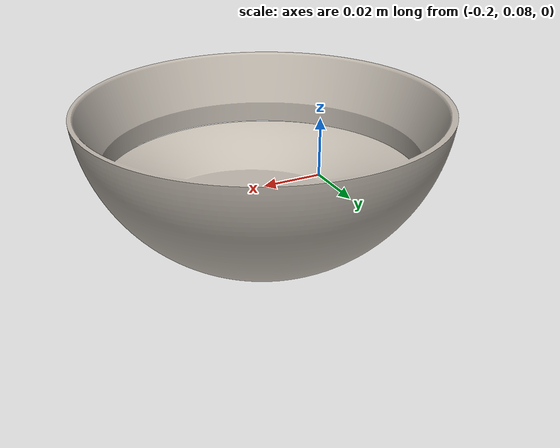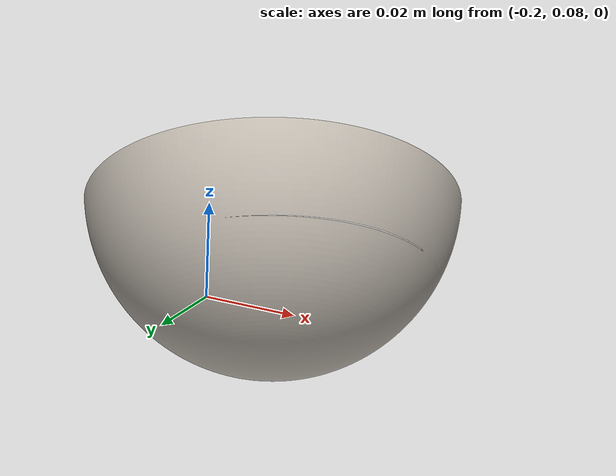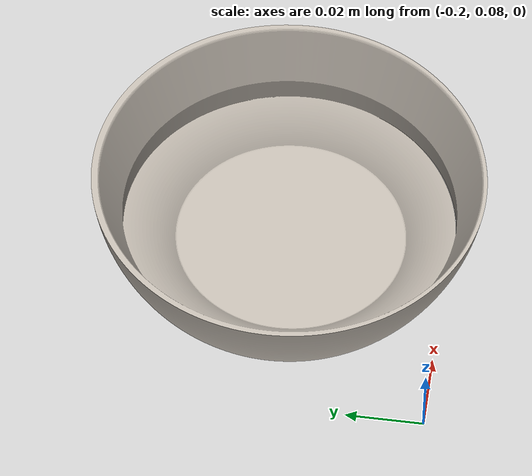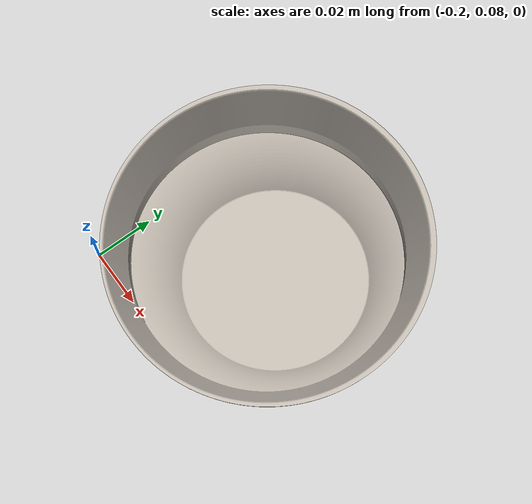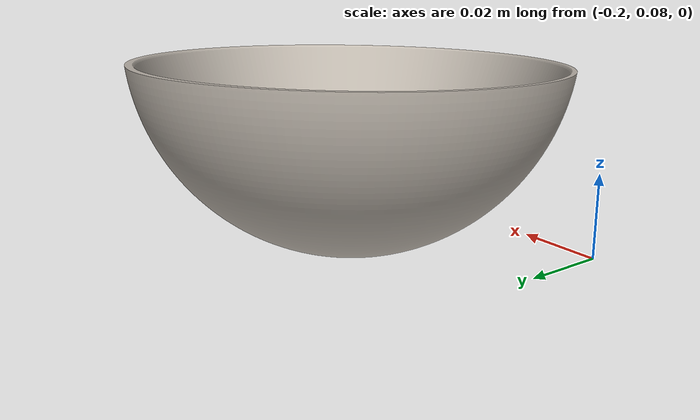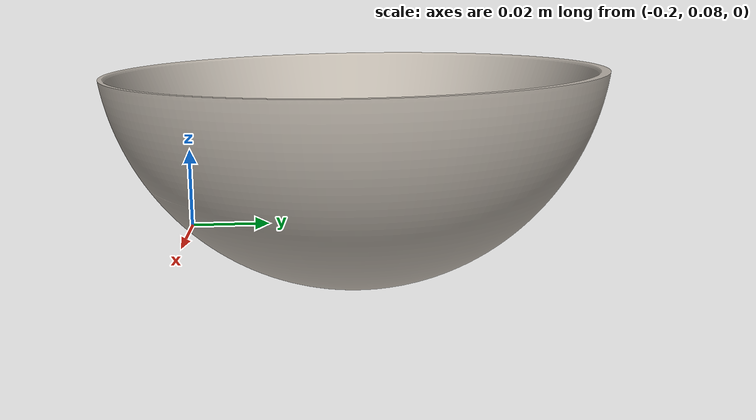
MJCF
<mujoco model="bowl">
  <asset>
    <mesh file="meshes/bowl.stl" name="bowl_mesh" scale="0.002 0.002 0.002"/>
    <texture file="../textures/metal.png" name="tex-metal"/>
    <material name="metal" reflectance="0.5" texrepeat="1 1" texture="tex-metal" texuniform="true"/>
  </asset>
  <worldbody>
    <body>
      <body name="collision">
        <geom pos="0 0 0" mesh="bowl_mesh" type="mesh" material="metal" density="1000" friction="0.5" group="1"/>
      </body>
      <body name="visual">
        <geom pos="0 0 0" mesh="bowl_mesh" type="mesh" material="metal"  conaffinity="0" contype="0" group="1"/>
      </body>
      <site rgba="0 0 0 0" size="0.005" pos="-0.125 0.075 0" name="bottom_site"/>
      <site rgba="0 0 0 0" size="0.005" pos="-0.125 0.075 0.075" name="top_site"/>
      <site rgba="0 0 0 0" size="0.005" pos="0.05 0 0" name="horizontal_radius_site"/>
    </body>
  </worldbody>
</mujoco>
